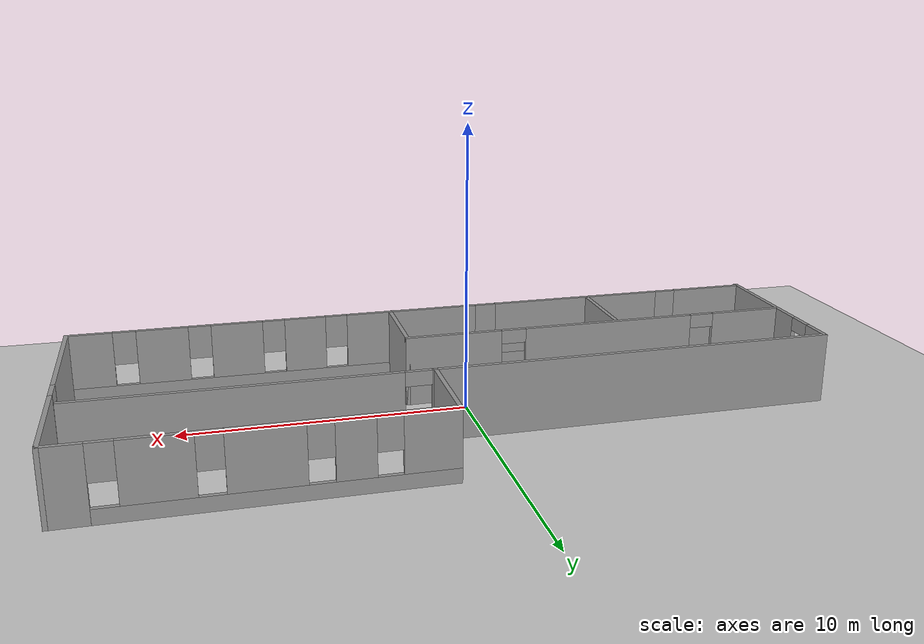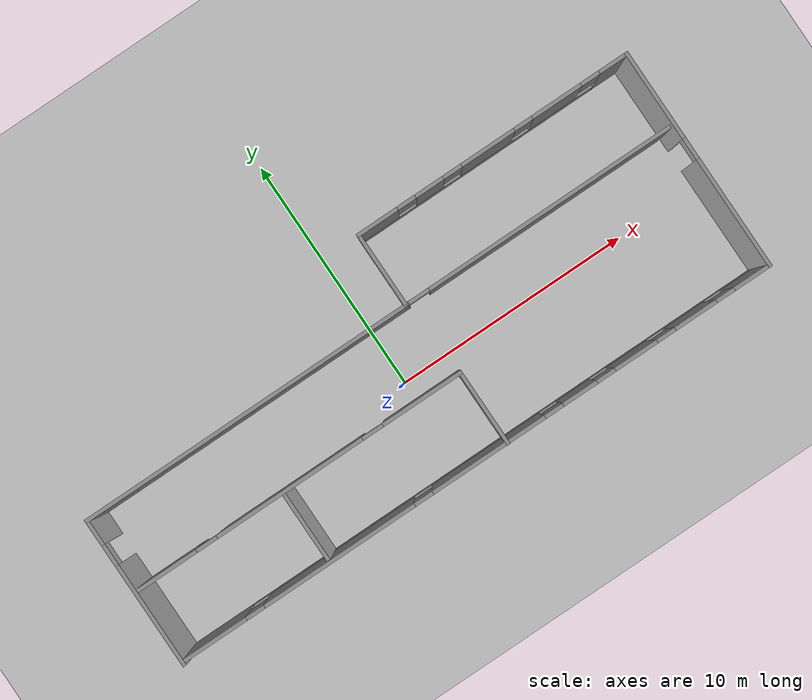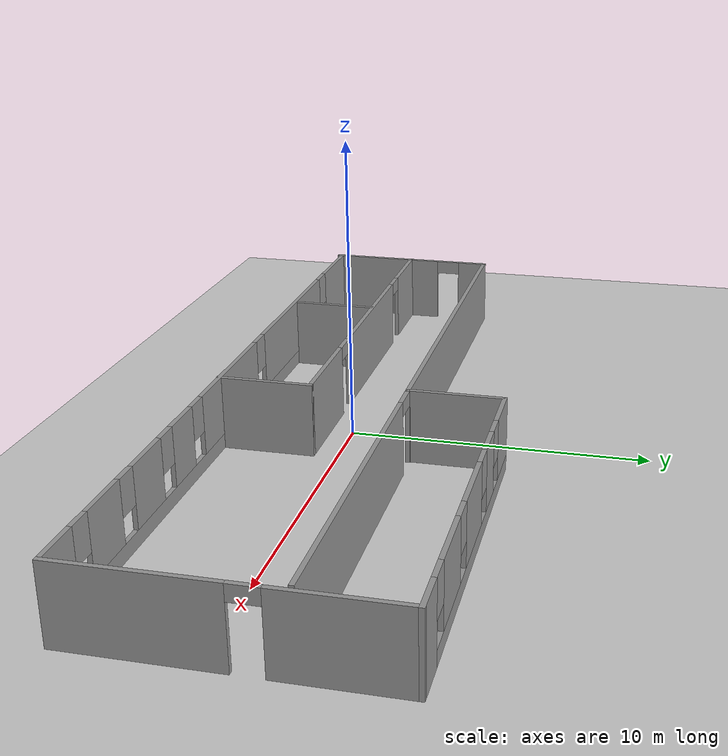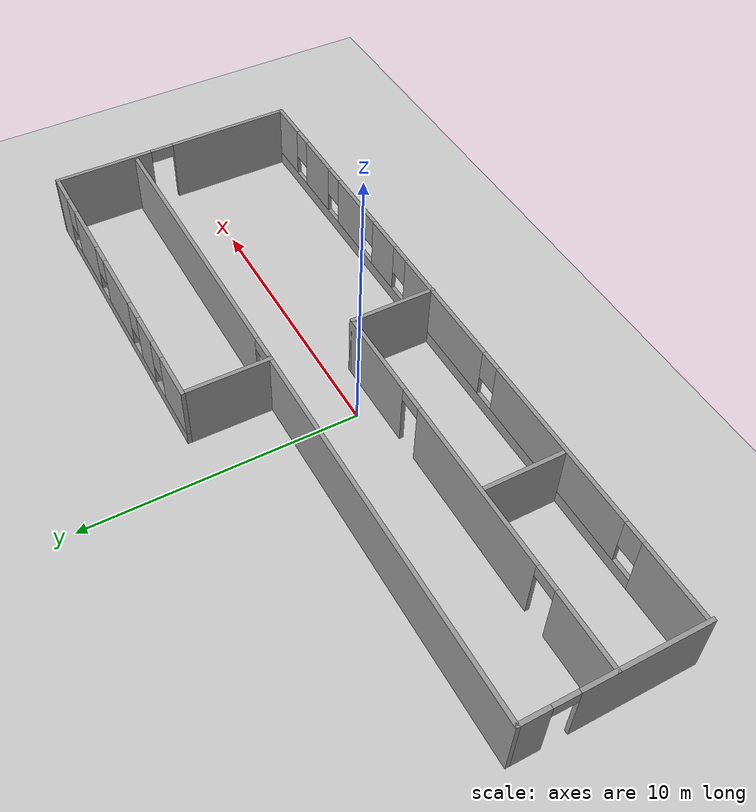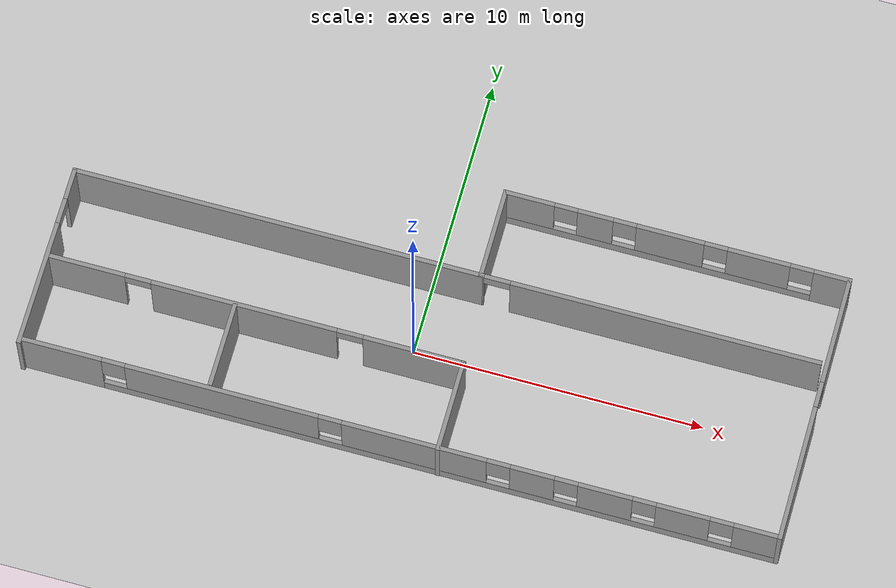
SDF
<sdf version="1.7">
 <world name="default">
  <light name="sun" type="directional">
   <pose>0 0 10 0 -0 0</pose>
   <diffuse>0.8 0.8 0.8 1</diffuse>
   <specular>0.2 0.2 0.2 1</specular>
   <attenuation>
    <range>1000</range>
    <constant>0.9</constant>
    <linear>0.01</linear>
    <quadratic>0.001</quadratic>
   </attenuation>
   <direction>-0.5 0.1 -0.9</direction>
   <spot><inner_angle>0</inner_angle><outer_angle>0</outer_angle><falloff>0</falloff></spot>
  </light>
  <model name="ground_plane">
   <static>1</static>
   <link name="link">
    <collision name="collision">
     <geometry><plane><normal>0 0 1</normal><size>100 100</size></plane></geometry>
     <surface>
      <contact><collide_bitmask>65535</collide_bitmask></contact>
      <friction><ode><mu>100</mu><mu2>50</mu2></ode></friction>
     </surface>
    </collision>
    <visual name="visual">
     <cast_shadows>0</cast_shadows>
     <geometry><plane><normal>0 0 1</normal><size>100 100</size></plane></geometry>
     <material>
      <script><uri>file://media/materials/scripts/gazebo.material</uri><name>Gazebo/Grey</name></script>
     </material>
    </visual>
   </link>
  </model>
  <gravity>0 0 -9.8</gravity>
  <magnetic_field>6e-06 2.3e-05 -4.2e-05</magnetic_field>
  <atmosphere type="adiabatic"/>
  <physics type="ode">
   <max_step_size>0.001</max_step_size>
   <real_time_factor>1</real_time_factor>
   <real_time_update_rate>1000</real_time_update_rate>
  </physics>
  <scene><ambient>0.4 0.4 0.4 1</ambient><background>0.7 0.7 0.7 1</background><shadows>1</shadows></scene>
  <spherical_coordinates>
   <surface_model>EARTH_WGS84</surface_model>
   <latitude_deg>0</latitude_deg>
   <longitude_deg>0</longitude_deg>
   <elevation>0</elevation>
   <heading_deg>0</heading_deg>
  </spherical_coordinates>
  <model name="lab_level5">
   <pose>0.537247 3.18913 0 0 -0 0</pose>
   <link name="Wall_10">
    <pose>12.975 -2.41973 0 0 -0 1.5708</pose>
    <visual name="Wall_10_Visual_0">
     <pose>-2.35924 0 1.25 0 -0 0</pose>
     <geometry><box><size>4.78153 0.15 2.5</size></box></geometry>
     <material>
      <script><uri>file://media/materials/scripts/gazebo.material</uri><name>Gazebo/Grey</name></script>
      <ambient>1 1 1 1</ambient>
     </material>
     <meta><layer>0</layer></meta>
    </visual>
    <collision name="Wall_10_Collision_0">
     <geometry><box><size>4.78153 0.15 2.5</size></box></geometry>
     <pose>-2.35924 0 1.25 0 -0 0</pose>
    </collision>
    <visual name="Wall_10_Visual_1">
     <pose>2.84076 0 1.25 0 -0 0</pose>
     <geometry><box><size>3.81847 0.15 2.5</size></box></geometry>
     <material>
      <script><uri>file://media/materials/scripts/gazebo.material</uri><name>Gazebo/Grey</name></script>
      <ambient>1 1 1 1</ambient>
     </material>
     <meta><layer>0</layer></meta>
    </visual>
    <collision name="Wall_10_Collision_1">
     <geometry><box><size>3.81847 0.15 2.5</size></box></geometry>
     <pose>2.84076 0 1.25 0 -0 0</pose>
    </collision>
    <visual name="Wall_10_Visual_2">
     <pose>0.481525 0 2.25 0 -0 0</pose>
     <geometry><box><size>0.9 0.15 0.5</size></box></geometry>
     <material>
      <script><uri>file://media/materials/scripts/gazebo.material</uri><name>Gazebo/Grey</name></script>
      <ambient>1 1 1 1</ambient>
     </material>
     <meta><layer>0</layer></meta>
    </visual>
    <collision name="Wall_10_Collision_2">
     <geometry><box><size>0.9 0.15 0.5</size></box></geometry>
     <pose>0.481525 0 2.25 0 -0 0</pose>
    </collision>
   </link>
   <link name="Wall_11">
    <pose>7.05 2.25527 0 0 -0 3.14159</pose>
    <visual name="Wall_11_Visual_0">
     <pose>-5.35184 0 1.25 0 -0 0</pose>
     <geometry><box><size>1.29632 0.15 2.5</size></box></geometry>
     <material>
      <script><uri>file://media/materials/scripts/gazebo.material</uri><name>Gazebo/Grey</name></script>
      <ambient>1 1 1 1</ambient>
     </material>
     <meta><layer>0</layer></meta>
    </visual>
    <collision name="Wall_11_Collision_0">
     <geometry><box><size>1.29632 0.15 2.5</size></box></geometry>
     <pose>-5.35184 0 1.25 0 -0 0</pose>
    </collision>
    <visual name="Wall_11_Visual_1">
     <pose>0.648159 0 0.25 0 -0 0</pose>
     <geometry><box><size>10.7037 0.15 0.5</size></box></geometry>
     <material>
      <script><uri>file://media/materials/scripts/gazebo.material</uri><name>Gazebo/Grey</name></script>
      <ambient>1 1 1 1</ambient>
     </material>
     <meta><layer>0</layer></meta>
    </visual>
    <collision name="Wall_11_Collision_1">
     <geometry><box><size>10.7037 0.15 0.5</size></box></geometry>
     <pose>0.648159 0 0.25 0 -0 0</pose>
    </collision>
    <visual name="Wall_11_Visual_2">
     <pose>-2.82701 0 1.5 0 -0 0</pose>
     <geometry><box><size>2.15334 0.15 2</size></box></geometry>
     <material>
      <script><uri>file://media/materials/scripts/gazebo.material</uri><name>Gazebo/Grey</name></script>
      <ambient>1 1 1 1</ambient>
     </material>
     <meta><layer>0</layer></meta>
    </visual>
    <collision name="Wall_11_Collision_2">
     <geometry><box><size>2.15334 0.15 2</size></box></geometry>
     <pose>-2.82701 0 1.5 0 -0 0</pose>
    </collision>
    <visual name="Wall_11_Visual_3">
     <pose>0.218617 0 1.5 0 -0 0</pose>
     <geometry><box><size>2.33792 0.15 2</size></box></geometry>
     <material>
      <script><uri>file://media/materials/scripts/gazebo.material</uri><name>Gazebo/Grey</name></script>
      <ambient>1 1 1 1</ambient>
     </material>
     <meta><layer>0</layer></meta>
    </visual>
    <collision name="Wall_11_Collision_3">
     <geometry><box><size>2.33792 0.15 2</size></box></geometry>
     <pose>0.218617 0 1.5 0 -0 0</pose>
    </collision>
    <visual name="Wall_11_Visual_4">
     <pose>2.80279 0 1.5 0 -0 0</pose>
     <geometry><box><size>1.23042 0.15 2</size></box></geometry>
     <material>
      <script><uri>file://media/materials/scripts/gazebo.material</uri><name>Gazebo/Grey</name></script>
      <ambient>1 1 1 1</ambient>
     </material>
     <meta><layer>0</layer></meta>
    </visual>
    <collision name="Wall_11_Collision_4">
     <geometry><box><size>1.23042 0.15 2</size></box></geometry>
     <pose>2.80279 0 1.5 0 -0 0</pose>
    </collision>
    <visual name="Wall_11_Visual_5">
     <pose>5.109 0 1.5 0 -0 0</pose>
     <geometry><box><size>1.782 0.15 2</size></box></geometry>
     <material>
      <script><uri>file://media/materials/scripts/gazebo.material</uri><name>Gazebo/Grey</name></script>
      <ambient>1 1 1 1</ambient>
     </material>
     <meta><layer>0</layer></meta>
    </visual>
    <collision name="Wall_11_Collision_5">
     <geometry><box><size>1.782 0.15 2</size></box></geometry>
     <pose>5.109 0 1.5 0 -0 0</pose>
    </collision>
    <visual name="Wall_11_Visual_6">
     <pose>-4.30368 0 1.9 0 -0 0</pose>
     <geometry><box><size>0.8 0.15 1.2</size></box></geometry>
     <material>
      <script><uri>file://media/materials/scripts/gazebo.material</uri><name>Gazebo/Grey</name></script>
      <ambient>1 1 1 1</ambient>
     </material>
     <meta><layer>0</layer></meta>
    </visual>
    <collision name="Wall_11_Collision_6">
     <geometry><box><size>0.8 0.15 1.2</size></box></geometry>
     <pose>-4.30368 0 1.9 0 -0 0</pose>
    </collision>
    <visual name="Wall_11_Visual_7">
     <pose>-1.35034 0 1.9 0 -0 0</pose>
     <geometry><box><size>0.8 0.15 1.2</size></box></geometry>
     <material>
      <script><uri>file://media/materials/scripts/gazebo.material</uri><name>Gazebo/Grey</name></script>
      <ambient>1 1 1 1</ambient>
     </material>
     <meta><layer>0</layer></meta>
    </visual>
    <collision name="Wall_11_Collision_7">
     <geometry><box><size>0.8 0.15 1.2</size></box></geometry>
     <pose>-1.35034 0 1.9 0 -0 0</pose>
    </collision>
    <visual name="Wall_11_Visual_8">
     <pose>1.78758 0 1.9 0 -0 0</pose>
     <geometry><box><size>0.8 0.15 1.2</size></box></geometry>
     <material>
      <script><uri>file://media/materials/scripts/gazebo.material</uri><name>Gazebo/Grey</name></script>
      <ambient>1 1 1 1</ambient>
     </material>
     <meta><layer>0</layer></meta>
    </visual>
    <collision name="Wall_11_Collision_8">
     <geometry><box><size>0.8 0.15 1.2</size></box></geometry>
     <pose>1.78758 0 1.9 0 -0 0</pose>
    </collision>
    <visual name="Wall_11_Visual_9">
     <pose>3.818 0 1.9 0 -0 0</pose>
     <geometry><box><size>0.8 0.15 1.2</size></box></geometry>
     <material>
      <script><uri>file://media/materials/scripts/gazebo.material</uri><name>Gazebo/Grey</name></script>
      <ambient>1 1 1 1</ambient>
     </material>
     <meta><layer>0</layer></meta>
    </visual>
    <collision name="Wall_11_Collision_9">
     <geometry><box><size>0.8 0.15 1.2</size></box></geometry>
     <pose>3.818 0 1.9 0 -0 0</pose>
    </collision>
   </link>
   <link name="Wall_19">
    <collision name="Wall_19_Collision">
     <geometry><box><size>3.25 0.15 2.5</size></box></geometry>
     <pose>0 0 1.25 0 -0 0</pose>
    </collision>
    <visual name="Wall_19_Visual">
     <pose>0 0 1.25 0 -0 0</pose>
     <geometry><box><size>3.25 0.15 2.5</size></box></geometry>
     <material>
      <script><uri>file://media/materials/scripts/gazebo.material</uri><name>Gazebo/Grey</name></script>
      <ambient>1 1 1 1</ambient>
     </material>
     <meta><layer>0</layer></meta>
    </visual>
    <pose>1.125 0.705267 0 0 -0 -1.5708</pose>
   </link>
   <link name="Wall_20">
    <collision name="Wall_20_Collision">
     <geometry><box><size>14.25 0.15 2.5</size></box></geometry>
     <pose>0 0 1.25 0 -0 0</pose>
    </collision>
    <visual name="Wall_20_Visual">
     <pose>0 0 1.25 0 -0 0</pose>
     <geometry><box><size>14.25 0.15 2.5</size></box></geometry>
     <material>
      <script><uri>file://media/materials/scripts/gazebo.material</uri><name>Gazebo/Grey</name></script>
      <ambient>1 1 1 1</ambient>
     </material>
     <meta><layer>0</layer></meta>
    </visual>
    <pose>-5.925 -0.844732 0 0 -0 3.14159</pose>
   </link>
   <link name="Wall_21">
    <pose>-12.975 -4.01973 0 0 -0 -1.5708</pose>
    <visual name="Wall_21_Visual_0">
     <pose>-2.67542 0 1.25 0 -0 0</pose>
     <geometry><box><size>1.14917 0.15 2.5</size></box></geometry>
     <material>
      <script><uri>file://media/materials/scripts/gazebo.material</uri><name>Gazebo/Grey</name></script>
      <ambient>1 1 1 1</ambient>
     </material>
     <meta><layer>0</layer></meta>
    </visual>
    <collision name="Wall_21_Collision_0">
     <geometry><box><size>1.14917 0.15 2.5</size></box></geometry>
     <pose>-2.67542 0 1.25 0 -0 0</pose>
    </collision>
    <visual name="Wall_21_Visual_1">
     <pose>1.02459 0 1.25 0 -0 0</pose>
     <geometry><box><size>4.45083 0.15 2.5</size></box></geometry>
     <material>
      <script><uri>file://media/materials/scripts/gazebo.material</uri><name>Gazebo/Grey</name></script>
      <ambient>1 1 1 1</ambient>
     </material>
     <meta><layer>0</layer></meta>
    </visual>
    <collision name="Wall_21_Collision_1">
     <geometry><box><size>4.45083 0.15 2.5</size></box></geometry>
     <pose>1.02459 0 1.25 0 -0 0</pose>
    </collision>
    <visual name="Wall_21_Visual_2">
     <pose>-1.65083 0 2.25 0 -0 0</pose>
     <geometry><box><size>0.9 0.15 0.5</size></box></geometry>
     <material>
      <script><uri>file://media/materials/scripts/gazebo.material</uri><name>Gazebo/Grey</name></script>
      <ambient>1 1 1 1</ambient>
     </material>
     <meta><layer>0</layer></meta>
    </visual>
    <collision name="Wall_21_Collision_2">
     <geometry><box><size>0.9 0.15 0.5</size></box></geometry>
     <pose>-1.65083 0 2.25 0 -0 0</pose>
    </collision>
   </link>
   <link name="Wall_23">
    <pose>-5.78759 -4.01371 0 0 -0 0</pose>
    <visual name="Wall_23_Visual_0">
     <pose>-5.86216 0 1.25 0 -0 0</pose>
     <geometry><box><size>2.77568 0.15 2.5</size></box></geometry>
     <material>
      <script><uri>file://media/materials/scripts/gazebo.material</uri><name>Gazebo/Grey</name></script>
      <ambient>1 1 1 1</ambient>
     </material>
     <meta><layer>0</layer></meta>
    </visual>
    <collision name="Wall_23_Collision_0">
     <geometry><box><size>2.77568 0.15 2.5</size></box></geometry>
     <pose>-5.86216 0 1.25 0 -0 0</pose>
    </collision>
    <visual name="Wall_23_Visual_1">
     <pose>-0.363414 0 1.25 0 -0 0</pose>
     <geometry><box><size>6.42182 0.15 2.5</size></box></geometry>
     <material>
      <script><uri>file://media/materials/scripts/gazebo.material</uri><name>Gazebo/Grey</name></script>
      <ambient>1 1 1 1</ambient>
     </material>
     <meta><layer>0</layer></meta>
    </visual>
    <collision name="Wall_23_Collision_1">
     <geometry><box><size>6.42182 0.15 2.5</size></box></geometry>
     <pose>-0.363414 0 1.25 0 -0 0</pose>
    </collision>
    <visual name="Wall_23_Visual_2">
     <pose>5.49875 0 1.25 0 -0 0</pose>
     <geometry><box><size>3.50251 0.15 2.5</size></box></geometry>
     <material>
      <script><uri>file://media/materials/scripts/gazebo.material</uri><name>Gazebo/Grey</name></script>
      <ambient>1 1 1 1</ambient>
     </material>
     <meta><layer>0</layer></meta>
    </visual>
    <collision name="Wall_23_Collision_2">
     <geometry><box><size>3.50251 0.15 2.5</size></box></geometry>
     <pose>5.49875 0 1.25 0 -0 0</pose>
    </collision>
    <visual name="Wall_23_Visual_3">
     <pose>-4.02432 0 2.25 0 -0 0</pose>
     <geometry><box><size>0.9 0.15 0.5</size></box></geometry>
     <material>
      <script><uri>file://media/materials/scripts/gazebo.material</uri><name>Gazebo/Grey</name></script>
      <ambient>1 1 1 1</ambient>
     </material>
     <meta><layer>0</layer></meta>
    </visual>
    <collision name="Wall_23_Collision_3">
     <geometry><box><size>0.9 0.15 0.5</size></box></geometry>
     <pose>-4.02432 0 2.25 0 -0 0</pose>
    </collision>
    <visual name="Wall_23_Visual_4">
     <pose>3.2975 0 2.25 0 -0 0</pose>
     <geometry><box><size>0.9 0.15 0.5</size></box></geometry>
     <material>
      <script><uri>file://media/materials/scripts/gazebo.material</uri><name>Gazebo/Grey</name></script>
      <ambient>1 1 1 1</ambient>
     </material>
     <meta><layer>0</layer></meta>
    </visual>
    <collision name="Wall_23_Collision_4">
     <geometry><box><size>0.9 0.15 0.5</size></box></geometry>
     <pose>3.2975 0 2.25 0 -0 0</pose>
    </collision>
   </link>
   <link name="Wall_24">
    <collision name="Wall_24_Collision">
     <geometry><box><size>3.25 0.15 2.5</size></box></geometry>
     <pose>0 0 1.25 0 -0 0</pose>
    </collision>
    <visual name="Wall_24_Visual">
     <pose>0 0 1.25 0 -0 0</pose>
     <geometry><box><size>3.25 0.15 2.5</size></box></geometry>
     <material>
      <script><uri>file://media/materials/scripts/gazebo.material</uri><name>Gazebo/Grey</name></script>
      <ambient>1 1 1 1</ambient>
     </material>
     <meta><layer>0</layer></meta>
    </visual>
    <pose>1.38741 -5.56371 0 0 -0 -1.5708</pose>
   </link>
   <link name="Wall_28">
    <collision name="Wall_28_Collision">
     <geometry><box><size>3 0.15 2.5</size></box></geometry>
     <pose>0 0 1.25 0 -0 0</pose>
    </collision>
    <visual name="Wall_28_Visual">
     <pose>0 0 1.25 0 -0 0</pose>
     <geometry><box><size>3 0.15 2.5</size></box></geometry>
     <material>
      <script><uri>file://media/materials/scripts/gazebo.material</uri><name>Gazebo/Grey</name></script>
      <ambient>1 1 1 1</ambient>
     </material>
     <meta><layer>0</layer></meta>
    </visual>
    <pose>-6.45294 -5.50946 0 0 -0 -1.5708</pose>
   </link>
   <link name="Wall_75">
    <pose>6.925 -0.844732 0 0 -0 0</pose>
    <visual name="Wall_75_Visual_0">
     <pose>-5.7781 0 1.25 0 -0 0</pose>
     <geometry><box><size>0.193805 0.15 2.5</size></box></geometry>
     <material>
      <script><uri>file://media/materials/scripts/gazebo.material</uri><name>Gazebo/Grey</name></script>
      <ambient>1 1 1 1</ambient>
     </material>
     <meta><layer>0</layer></meta>
    </visual>
    <collision name="Wall_75_Collision_0">
     <geometry><box><size>0.193805 0.15 2.5</size></box></geometry>
     <pose>-5.7781 0 1.25 0 -0 0</pose>
    </collision>
    <visual name="Wall_75_Visual_1">
     <pose>0.546902 0 1.25 0 -0 0</pose>
     <geometry><box><size>10.6562 0.15 2.5</size></box></geometry>
     <material>
      <script><uri>file://media/materials/scripts/gazebo.material</uri><name>Gazebo/Grey</name></script>
      <ambient>1 1 1 1</ambient>
     </material>
     <meta><layer>0</layer></meta>
    </visual>
    <collision name="Wall_75_Collision_1">
     <geometry><box><size>10.6562 0.15 2.5</size></box></geometry>
     <pose>0.546902 0 1.25 0 -0 0</pose>
    </collision>
    <visual name="Wall_75_Visual_2">
     <pose>-5.23119 0 2.25 0 -0 0</pose>
     <geometry><box><size>0.9 0.15 0.5</size></box></geometry>
     <material>
      <script><uri>file://media/materials/scripts/gazebo.material</uri><name>Gazebo/Grey</name></script>
      <ambient>1 1 1 1</ambient>
     </material>
     <meta><layer>0</layer></meta>
    </visual>
    <collision name="Wall_75_Collision_2">
     <geometry><box><size>0.9 0.15 0.5</size></box></geometry>
     <pose>-5.23119 0 2.25 0 -0 0</pose>
    </collision>
   </link>
   <link name="Wall_9">
    <pose>0.05 -7.09473 0 0 -0 0</pose>
    <visual name="Wall_9_Visual_0">
     <pose>-11.6002 0 1.25 0 -0 0</pose>
     <geometry><box><size>2.79962 0.15 2.5</size></box></geometry>
     <material>
      <script><uri>file://media/materials/scripts/gazebo.material</uri><name>Gazebo/Grey</name></script>
      <ambient>1 1 1 1</ambient>
     </material>
     <meta><layer>0</layer></meta>
    </visual>
    <collision name="Wall_9_Collision_0">
     <geometry><box><size>2.79962 0.15 2.5</size></box></geometry>
     <pose>-11.6002 0 1.25 0 -0 0</pose>
    </collision>
    <visual name="Wall_9_Visual_1">
     <pose>1.39981 0 0.25 0 -0 0</pose>
     <geometry><box><size>23.2004 0.15 0.5</size></box></geometry>
     <material>
      <script><uri>file://media/materials/scripts/gazebo.material</uri><name>Gazebo/Grey</name></script>
      <ambient>1 1 1 1</ambient>
     </material>
     <meta><layer>0</layer></meta>
    </visual>
    <collision name="Wall_9_Collision_1">
     <geometry><box><size>23.2004 0.15 0.5</size></box></geometry>
     <pose>1.39981 0 0.25 0 -0 0</pose>
    </collision>
    <visual name="Wall_9_Visual_2">
     <pose>-6.07794 0 1.5 0 -0 0</pose>
     <geometry><box><size>6.64487 0.15 2</size></box></geometry>
     <material>
      <script><uri>file://media/materials/scripts/gazebo.material</uri><name>Gazebo/Grey</name></script>
      <ambient>1 1 1 1</ambient>
     </material>
     <meta><layer>0</layer></meta>
    </visual>
    <collision name="Wall_9_Collision_2">
     <geometry><box><size>6.64487 0.15 2</size></box></geometry>
     <pose>-6.07794 0 1.5 0 -0 0</pose>
    </collision>
    <visual name="Wall_9_Visual_3">
     <pose>0.520451 0 1.5 0 -0 0</pose>
     <geometry><box><size>4.95192 0.15 2</size></box></geometry>
     <material>
      <script><uri>file://media/materials/scripts/gazebo.material</uri><name>Gazebo/Grey</name></script>
      <ambient>1 1 1 1</ambient>
     </material>
     <meta><layer>0</layer></meta>
    </visual>
    <collision name="Wall_9_Collision_3">
     <geometry><box><size>4.95192 0.15 2</size></box></geometry>
     <pose>0.520451 0 1.5 0 -0 0</pose>
    </collision>
    <visual name="Wall_9_Visual_4">
     <pose>4.5487 0 1.5 0 -0 0</pose>
     <geometry><box><size>1.50459 0.15 2</size></box></geometry>
     <material>
      <script><uri>file://media/materials/scripts/gazebo.material</uri><name>Gazebo/Grey</name></script>
      <ambient>1 1 1 1</ambient>
     </material>
     <meta><layer>0</layer></meta>
    </visual>
    <collision name="Wall_9_Collision_4">
     <geometry><box><size>1.50459 0.15 2</size></box></geometry>
     <pose>4.5487 0 1.5 0 -0 0</pose>
    </collision>
    <visual name="Wall_9_Visual_5">
     <pose>7.0252 0 1.5 0 -0 0</pose>
     <geometry><box><size>1.8484 0.15 2</size></box></geometry>
     <material>
      <script><uri>file://media/materials/scripts/gazebo.material</uri><name>Gazebo/Grey</name></script>
      <ambient>1 1 1 1</ambient>
     </material>
     <meta><layer>0</layer></meta>
    </visual>
    <collision name="Wall_9_Collision_5">
     <geometry><box><size>1.8484 0.15 2</size></box></geometry>
     <pose>7.0252 0 1.5 0 -0 0</pose>
    </collision>
    <visual name="Wall_9_Visual_6">
     <pose>9.65841 0 1.5 0 -0 0</pose>
     <geometry><box><size>1.81801 0.15 2</size></box></geometry>
     <material>
      <script><uri>file://media/materials/scripts/gazebo.material</uri><name>Gazebo/Grey</name></script>
      <ambient>1 1 1 1</ambient>
     </material>
     <meta><layer>0</layer></meta>
    </visual>
    <collision name="Wall_9_Collision_6">
     <geometry><box><size>1.81801 0.15 2</size></box></geometry>
     <pose>9.65841 0 1.5 0 -0 0</pose>
    </collision>
    <visual name="Wall_9_Visual_7">
     <pose>12.1837 0 1.5 0 -0 0</pose>
     <geometry><box><size>1.63259 0.15 2</size></box></geometry>
     <material>
      <script><uri>file://media/materials/scripts/gazebo.material</uri><name>Gazebo/Grey</name></script>
      <ambient>1 1 1 1</ambient>
     </material>
     <meta><layer>0</layer></meta>
    </visual>
    <collision name="Wall_9_Collision_7">
     <geometry><box><size>1.63259 0.15 2</size></box></geometry>
     <pose>12.1837 0 1.5 0 -0 0</pose>
    </collision>
    <visual name="Wall_9_Visual_8">
     <pose>-9.80038 0 1.9 0 -0 0</pose>
     <geometry><box><size>0.8 0.15 1.2</size></box></geometry>
     <material>
      <script><uri>file://media/materials/scripts/gazebo.material</uri><name>Gazebo/Grey</name></script>
      <ambient>1 1 1 1</ambient>
     </material>
     <meta><layer>0</layer></meta>
    </visual>
    <collision name="Wall_9_Collision_8">
     <geometry><box><size>0.8 0.15 1.2</size></box></geometry>
     <pose>-9.80038 0 1.9 0 -0 0</pose>
    </collision>
    <visual name="Wall_9_Visual_9">
     <pose>-2.35551 0 1.9 0 -0 0</pose>
     <geometry><box><size>0.8 0.15 1.2</size></box></geometry>
     <material>
      <script><uri>file://media/materials/scripts/gazebo.material</uri><name>Gazebo/Grey</name></script>
      <ambient>1 1 1 1</ambient>
     </material>
     <meta><layer>0</layer></meta>
    </visual>
    <collision name="Wall_9_Collision_9">
     <geometry><box><size>0.8 0.15 1.2</size></box></geometry>
     <pose>-2.35551 0 1.9 0 -0 0</pose>
    </collision>
    <visual name="Wall_9_Visual_10">
     <pose>3.39641 0 1.9 0 -0 0</pose>
     <geometry><box><size>0.8 0.15 1.2</size></box></geometry>
     <material>
      <script><uri>file://media/materials/scripts/gazebo.material</uri><name>Gazebo/Grey</name></script>
      <ambient>1 1 1 1</ambient>
     </material>
     <meta><layer>0</layer></meta>
    </visual>
    <collision name="Wall_9_Collision_10">
     <geometry><box><size>0.8 0.15 1.2</size></box></geometry>
     <pose>3.39641 0 1.9 0 -0 0</pose>
    </collision>
    <visual name="Wall_9_Visual_11">
     <pose>5.701 0 1.9 0 -0 0</pose>
     <geometry><box><size>0.8 0.15 1.2</size></box></geometry>
     <material>
      <script><uri>file://media/materials/scripts/gazebo.material</uri><name>Gazebo/Grey</name></script>
      <ambient>1 1 1 1</ambient>
     </material>
     <meta><layer>0</layer></meta>
    </visual>
    <collision name="Wall_9_Collision_11">
     <geometry><box><size>0.8 0.15 1.2</size></box></geometry>
     <pose>5.701 0 1.9 0 -0 0</pose>
    </collision>
    <visual name="Wall_9_Visual_12">
     <pose>8.3494 0 1.9 0 -0 0</pose>
     <geometry><box><size>0.8 0.15 1.2</size></box></geometry>
     <material>
      <script><uri>file://media/materials/scripts/gazebo.material</uri><name>Gazebo/Grey</name></script>
      <ambient>1 1 1 1</ambient>
     </material>
     <meta><layer>0</layer></meta>
    </visual>
    <collision name="Wall_9_Collision_12">
     <geometry><box><size>0.8 0.15 1.2</size></box></geometry>
     <pose>8.3494 0 1.9 0 -0 0</pose>
    </collision>
    <visual name="Wall_9_Visual_13">
     <pose>10.9674 0 1.9 0 -0 0</pose>
     <geometry><box><size>0.8 0.15 1.2</size></box></geometry>
     <material>
      <script><uri>file://media/materials/scripts/gazebo.material</uri><name>Gazebo/Grey</name></script>
      <ambient>1 1 1 1</ambient>
     </material>
     <meta><layer>0</layer></meta>
    </visual>
    <collision name="Wall_9_Collision_13">
     <geometry><box><size>0.8 0.15 1.2</size></box></geometry>
     <pose>10.9674 0 1.9 0 -0 0</pose>
    </collision>
   </link>
   <static>1</static>
  </model>
 </world>
</sdf>
